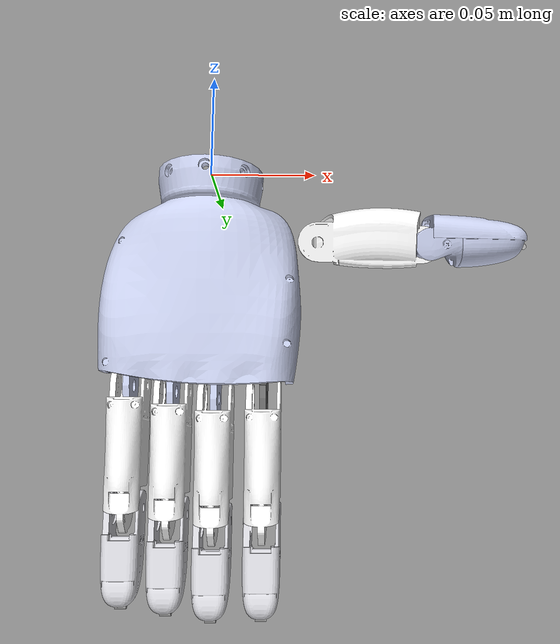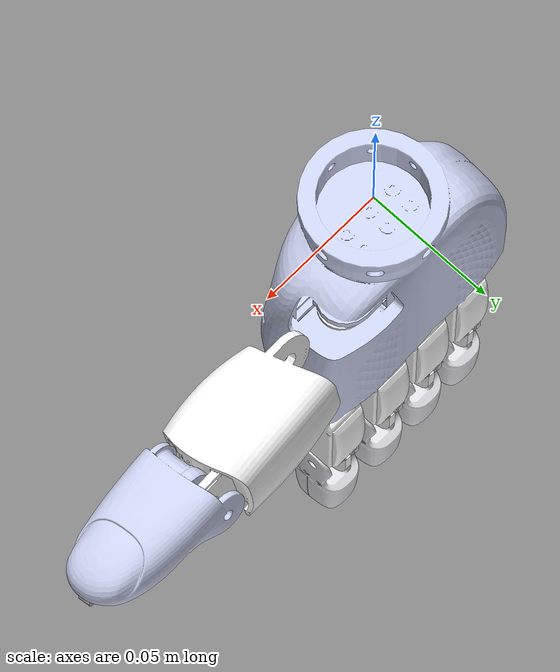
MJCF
<mujoco model="xhand_right">
  <compiler angle="radian" meshdir="./meshes/"/>

  <asset>
    <mesh name="right_hand_link" content_type="model/stl" file="right_hand_link.STL"/>
    <mesh name="right_hand_ee_link" content_type="model/stl" file="right_hand_ee_link.STL"/>
    <mesh name="right_hand_thumb_bend_link" content_type="model/stl" file="right_hand_thumb_bend_link.STL"/>
    <mesh name="right_hand_thumb_rota_link1" content_type="model/stl" file="right_hand_thumb_rota_link1.STL"/>
    <mesh name="right_hand_thumb_rota_link2" content_type="model/stl" file="right_hand_thumb_rota_link2.STL"/>
    <mesh name="right_hand_thumb_rota_tip" content_type="model/stl" file="right_hand_thumb_rota_tip.STL"/>
    <mesh name="right_hand_index_bend_link" content_type="model/stl" file="right_hand_index_bend_link.STL"/>
    <mesh name="right_hand_index_rota_link1" content_type="model/stl" file="right_hand_index_rota_link1.STL"/>
    <mesh name="right_hand_index_rota_link2" content_type="model/stl" file="right_hand_index_rota_link2.STL"/>
    <mesh name="right_hand_index_rota_tip" content_type="model/stl" file="right_hand_index_rota_tip.STL"/>
    <mesh name="right_hand_mid_link1" content_type="model/stl" file="right_hand_mid_link1.STL"/>
    <mesh name="right_hand_mid_link2" content_type="model/stl" file="right_hand_mid_link2.STL"/>
    <mesh name="right_hand_mid_tip" content_type="model/stl" file="right_hand_mid_tip.STL"/>
    <mesh name="right_hand_ring_link1" content_type="model/stl" file="right_hand_ring_link1.STL"/>
    <mesh name="right_hand_ring_link2" content_type="model/stl" file="right_hand_ring_link2.STL"/>
    <mesh name="right_hand_ring_tip" content_type="model/stl" file="right_hand_ring_tip.STL"/>
    <mesh name="right_hand_pinky_link1" content_type="model/stl" file="right_hand_pinky_link1.STL"/>
    <mesh name="right_hand_pinky_link2" content_type="model/stl" file="right_hand_pinky_link2.STL"/>
    <mesh name="right_hand_pinky_tip" content_type="model/stl" file="right_hand_pinky_tip.STL"/>
  </asset>

  <worldbody>
    <geom type="mesh" contype="0" conaffinity="0" group="1" density="0" rgba="0.792157 0.819608 0.933333 1" mesh="right_hand_link"/>
    <geom type="mesh" rgba="0.792157 0.819608 0.933333 1" mesh="right_hand_link"/>
    <geom pos="0 0 -0.065" type="mesh" contype="0" conaffinity="0" group="1" density="0" rgba="0.698039 0.698039 0.698039 1" mesh="right_hand_ee_link"/>
    <geom pos="0 0 -0.065" type="mesh" rgba="0.698039 0.698039 0.698039 1" mesh="right_hand_ee_link"/>
    <body name="right_hand_thumb_bend_link" pos="0.0228 0.0095 -0.0305">
      <inertial pos="0.0145291 -0.000901303 -0.000127926" quat="0.0288921 0.68936 0.0166971 0.72365" mass="0.00985529" diaginertia="1.30647e-06 1.29142e-06 5.40953e-07"/>
      <joint name="right_hand_thumb_bend_joint" pos="0 0 0" axis="0 0 1" range="0 1.83" actuatorfrcrange="-1.1 1.1" damping="1" frictionloss="1"/>
      <geom type="mesh" contype="0" conaffinity="0" group="1" density="0" rgba="0.890196 0.890196 0.913725 1" mesh="right_hand_thumb_bend_link"/>
      <geom type="mesh" rgba="0.890196 0.890196 0.913725 1" mesh="right_hand_thumb_bend_link"/>
      <body name="right_hand_thumb_rota_link1" pos="0.028599 0.0083177 0.00178" quat="0.99124 0.130499 0.00265603 0.0201745">
        <inertial pos="0.0279237 -0.000127603 -0.000272577" quat="-0.0989965 0.703671 0.0850598 0.698435" mass="0.153265" diaginertia="5.62327e-05 4.89801e-05 2.23924e-05"/>
        <joint name="right_hand_thumb_rota_joint1" pos="0 0 0" axis="0 1 0" range="-1.05 1.57" actuatorfrcrange="-1.1 1.1" damping="1" frictionloss="1"/>
        <geom type="mesh" contype="0" conaffinity="0" group="1" density="0" rgba="1 1 1 1" mesh="right_hand_thumb_rota_link1"/>
        <geom type="mesh" rgba="1 1 1 1" mesh="right_hand_thumb_rota_link1"/>
        <body name="right_hand_thumb_rota_link2" pos="0.0553 0 0">
          <inertial pos="0.0224697 -0.000691342 0.00302232" quat="-0.0604027 0.715612 0.0198065 0.695599" mass="0.0374004" diaginertia="9.54653e-06 8.2702e-06 3.92137e-06"/>
          <joint name="right_hand_thumb_rota_joint2" pos="0 0 0" axis="0 1 0" range="-0.175 1.83" actuatorfrcrange="-0.4 0.4" damping="1" frictionloss="1"/>
          <geom type="mesh" contype="0" conaffinity="0" group="1" density="0" rgba="0.792157 0.819608 0.933333 1" mesh="right_hand_thumb_rota_link2"/>
          <geom type="mesh" rgba="0.792157 0.819608 0.933333 1" mesh="right_hand_thumb_rota_link2"/>
          <geom pos="0.0504025 0 0" type="mesh" contype="0" conaffinity="0" group="1" density="0" rgba="0.698039 0.698039 0.698039 1" mesh="right_hand_thumb_rota_tip"/>
          <geom pos="0.0504025 0 0" type="mesh" rgba="0.698039 0.698039 0.698039 1" mesh="right_hand_thumb_rota_tip"/>
        </body>
      </body>
    </body>
    <body name="right_hand_index_bend_link" pos="0.0265 0.0065 -0.0899">
      <inertial pos="8.08449e-05 0.000675884 0.00420851" quat="0.999802 -0.0189928 -0.00582288 0.000998418" mass="0.0677836" diaginertia="2.16592e-05 2.09943e-05 3.36803e-06"/>
      <joint name="right_hand_index_bend_joint" pos="0 0 0" axis="0 1 0" range="-0.175 0.175" actuatorfrcrange="-0.4 0.4" damping="1" frictionloss="1"/>
      <geom type="mesh" contype="0" conaffinity="0" group="1" density="0" rgba="0.439216 0.439216 0.439216 1" mesh="right_hand_index_bend_link"/>
      <geom type="mesh" rgba="0.439216 0.439216 0.439216 1" mesh="right_hand_index_bend_link"/>
      <body name="right_hand_index_rota_link1" pos="0 0 -0.0178">
        <inertial pos="-0.00013977 -0.000800517 -0.0356039" quat="0.999865 0.00809183 -0.0131314 0.00566198" mass="0.0630216" diaginertia="2.05301e-05 1.92461e-05 4.135e-06"/>
        <joint name="right_hand_index_joint1" pos="0 0 0" axis="1 0 0" range="0 1.92" actuatorfrcrange="-1.1 1.1" damping="1" frictionloss="1"/>
        <geom type="mesh" contype="0" conaffinity="0" group="1" density="0" rgba="1 1 1 1" mesh="right_hand_index_rota_link1"/>
        <geom type="mesh" rgba="1 1 1 1" mesh="right_hand_index_rota_link1"/>
        <body name="right_hand_index_rota_link2" pos="0 0 -0.0558">
          <inertial pos="-0.000338569 1.93676e-05 -0.0231329" quat="0.935383 0.00588963 -0.0260882 0.352623" mass="0.0179923" diaginertia="3.02411e-06 3.01969e-06 9.82703e-07"/>
          <joint name="right_hand_index_joint2" pos="0 0 0" axis="1 0 0" range="0 1.92" actuatorfrcrange="-0.4 0.4" damping="1" frictionloss="1"/>
          <geom type="mesh" contype="0" conaffinity="0" group="1" density="0" rgba="0.866667 0.866667 0.890196 1" mesh="right_hand_index_rota_link2"/>
          <geom type="mesh" rgba="0.866667 0.866667 0.890196 1" mesh="right_hand_index_rota_link2"/>
          <geom pos="0 0 -0.0425" type="mesh" contype="0" conaffinity="0" group="1" density="0" rgba="0.698039 0.698039 0.698039 1" mesh="right_hand_index_rota_tip"/>
          <geom pos="0 0 -0.0425" type="mesh" rgba="0.698039 0.698039 0.698039 1" mesh="right_hand_index_rota_tip"/>
        </body>
      </body>
    </body>
    <body name="right_hand_mid_link1" pos="0.004 0.0065 -0.1082">
      <inertial pos="-0.000139769 -0.000800517 -0.0356039" quat="0.999865 0.00809181 -0.0131314 0.00566199" mass="0.0630216" diaginertia="2.05301e-05 1.92461e-05 4.135e-06"/>
      <joint name="right_hand_mid_joint1" pos="0 0 0" axis="1 0 0" range="0 1.92" actuatorfrcrange="-1.1 1.1" damping="1" frictionloss="1"/>
      <geom type="mesh" contype="0" conaffinity="0" group="1" density="0" rgba="1 1 1 1" mesh="right_hand_mid_link1"/>
      <geom type="mesh" rgba="1 1 1 1" mesh="right_hand_mid_link1"/>
      <body name="right_hand_mid_link2" pos="0 0 -0.0558">
        <inertial pos="-0.000338569 1.93676e-05 -0.0231329" quat="0.935383 0.00588963 -0.0260882 0.352623" mass="0.0179923" diaginertia="3.02411e-06 3.01969e-06 9.82703e-07"/>
        <joint name="right_hand_mid_joint2" pos="0 0 0" axis="1 0 0" range="0 1.94" actuatorfrcrange="-0.4 0.4" damping="1" frictionloss="1"/>
        <geom type="mesh" contype="0" conaffinity="0" group="1" density="0" rgba="0.866667 0.866667 0.890196 1" mesh="right_hand_mid_link2"/>
        <geom type="mesh" rgba="0.866667 0.866667 0.890196 1" mesh="right_hand_mid_link2"/>
        <geom pos="0 0 -0.042107" type="mesh" contype="0" conaffinity="0" group="1" density="0" rgba="0.698039 0.698039 0.698039 1" mesh="right_hand_mid_tip"/>
        <geom pos="0 0 -0.042107" type="mesh" rgba="0.698039 0.698039 0.698039 1" mesh="right_hand_mid_tip"/>
      </body>
    </body>
    <body name="right_hand_ring_link1" pos="-0.016 0.0065 -0.1052">
      <inertial pos="-0.00013977 -0.000800517 -0.0356039" quat="0.999865 0.00809183 -0.0131314 0.00566196" mass="0.0630216" diaginertia="2.05301e-05 1.92461e-05 4.135e-06"/>
      <joint name="right_hand_ring_joint1" pos="0 0 0" axis="1 0 0" range="0 1.92" actuatorfrcrange="-1.1 1.1" damping="1" frictionloss="1"/>
      <geom type="mesh" contype="0" conaffinity="0" group="1" density="0" rgba="1 1 1 1" mesh="right_hand_ring_link1"/>
      <geom type="mesh" rgba="1 1 1 1" mesh="right_hand_ring_link1"/>
      <body name="right_hand_ring_link2" pos="0 0 -0.0558">
        <inertial pos="-0.000338572 1.93622e-05 -0.0231329" quat="0.935371 0.00588858 -0.0260881 0.352655" mass="0.0179923" diaginertia="3.02411e-06 3.01969e-06 9.82702e-07"/>
        <joint name="right_hand_ring_joint2" pos="0 0 0" axis="1 0 0" range="0 1.92" actuatorfrcrange="-0.4 0.4" damping="1" frictionloss="1"/>
        <geom type="mesh" contype="0" conaffinity="0" group="1" density="0" rgba="0.866667 0.866667 0.890196 1" mesh="right_hand_ring_link2"/>
        <geom type="mesh" rgba="0.866667 0.866667 0.890196 1" mesh="right_hand_ring_link2"/>
        <geom pos="0 0 -0.0425" type="mesh" contype="0" conaffinity="0" group="1" density="0" rgba="0.698039 0.698039 0.698039 1" mesh="right_hand_ring_tip"/>
        <geom pos="0 0 -0.0425" type="mesh" rgba="0.698039 0.698039 0.698039 1" mesh="right_hand_ring_tip"/>
      </body>
    </body>
    <body name="right_hand_pinky_link1" pos="-0.036 0.0065 -0.1022">
      <inertial pos="-0.000139769 -0.000800517 -0.0356039" quat="0.999865 0.00809181 -0.0131314 0.00566204" mass="0.0630216" diaginertia="2.05301e-05 1.92461e-05 4.135e-06"/>
      <joint name="right_hand_pinky_joint1" pos="0 0 0" axis="1 0 0" range="0 1.92" actuatorfrcrange="-1.1 1.1" damping="1" frictionloss="1"/>
      <geom type="mesh" contype="0" conaffinity="0" group="1" density="0" rgba="1 1 1 1" mesh="right_hand_pinky_link1"/>
      <geom type="mesh" rgba="1 1 1 1" mesh="right_hand_pinky_link1"/>
      <body name="right_hand_pinky_link2" pos="0 0 -0.0558">
        <inertial pos="-0.000338569 1.93676e-05 -0.0231329" quat="0.935383 0.00588963 -0.0260882 0.352623" mass="0.0179923" diaginertia="3.02411e-06 3.01969e-06 9.82703e-07"/>
        <joint name="right_hand_pinky_joint2" pos="0 0 0" axis="1 0 0" range="0 1.92" actuatorfrcrange="-0.4 0.4" damping="1" frictionloss="1"/>
        <geom type="mesh" contype="0" conaffinity="0" group="1" density="0" rgba="0.866667 0.866667 0.890196 1" mesh="right_hand_pinky_link2"/>
        <geom type="mesh" rgba="0.866667 0.866667 0.890196 1" mesh="right_hand_pinky_link2"/>
        <geom pos="0 0 -0.0425" type="mesh" contype="0" conaffinity="0" group="1" density="0" rgba="0.698039 0.698039 0.698039 1" mesh="right_hand_pinky_tip"/>
        <geom pos="0 0 -0.0425" type="mesh" rgba="0.698039 0.698039 0.698039 1" mesh="right_hand_pinky_tip"/>
      </body>
    </body>
  </worldbody>
</mujoco>
